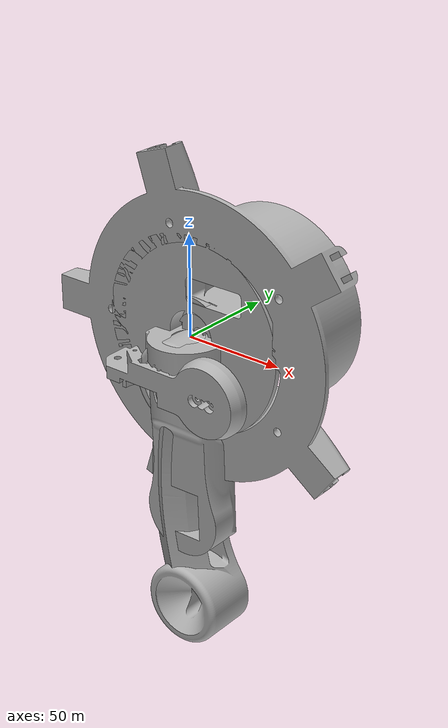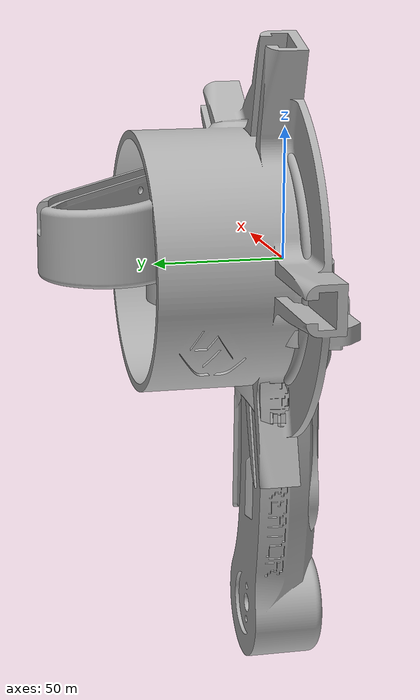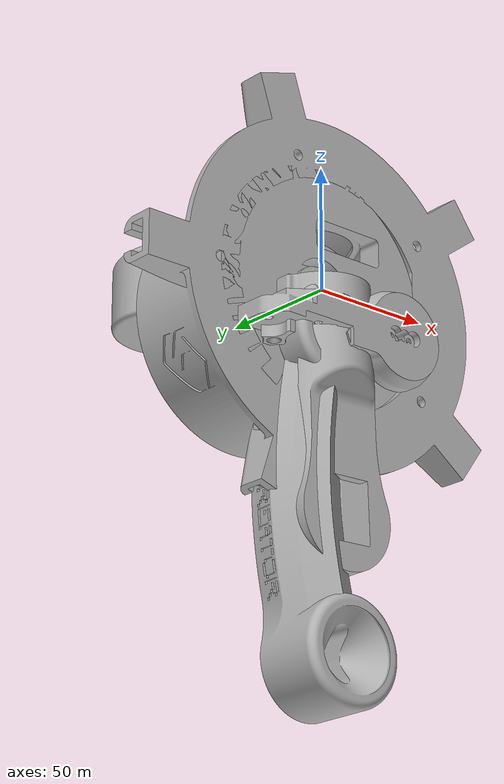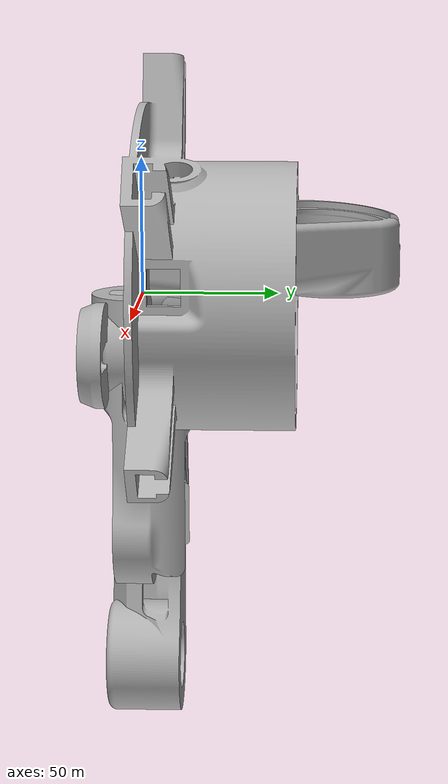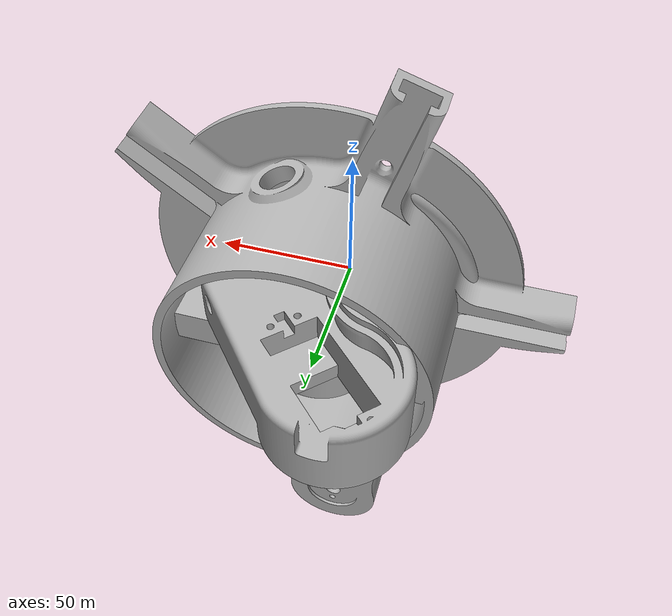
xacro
<?xml version="1.0"?>
<robot name="r6bot" xmlns:xacro="http://www.ros.org/wiki/xacro">

  <!-- 'pi' ya viene definido en xacro, no hay que redefinirlo -->

  <!-- macro auxiliar para crear links desde mallas -->
  <xacro:include filename="$(find r6bot_description)/urdf/create_link.xacro"/>

  <!-- marco fijo del mundo -->
  <link name="world"/>

  <!-- ===================== LINKS ===================== -->
  <xacro:create_link link_name="base_link" mesh_package="r6bot_description" mesh_name="base_link"/>
  <xacro:create_link link_name="link_1"    mesh_package="r6bot_description" mesh_name="link_1"/>
  <xacro:create_link link_name="link_2"    mesh_package="r6bot_description" mesh_name="link_2"/>
  <xacro:create_link link_name="link_3"    mesh_package="r6bot_description" mesh_name="link_3"/>
  <xacro:create_link link_name="link_4"    mesh_package="r6bot_description" mesh_name="link_4"/>
  <xacro:create_link link_name="link_5"    mesh_package="r6bot_description" mesh_name="link_5"/>

  <!-- marco de la herramienta / efector final -->
  <link name="tool0"/>

  <!-- ===================== JOINTS ===================== -->

  <!-- fija la base al mundo -->
  <joint name="base_joint" type="fixed">
    <parent link="world"/>
    <child link="base_link"/>
    <origin xyz="0 0 0" rpy="0 0 0"/>
  </joint>

  <!-- joint_1: base_link -> link_1   (AJUSTAR offset con la imagen) -->
  <joint name="joint_1" type="revolute">
    <parent link="base_link"/>
    <child link="link_1"/>
    <origin xyz="0 0 0.10" rpy="0 0 0"/>
    <axis xyz="0 0 1"/>
    <limit effort="1000.0" lower="${-pi}" upper="${pi}" velocity="2.5"/>
  </joint>

  <!-- joint_2: link_1 -> link_2 -->
  <joint name="joint_2" type="revolute">
    <parent link="link_1"/>
    <child link="link_2"/>
    <origin xyz="0 0 0.15" rpy="${-pi/2} 0 0"/>
    <axis xyz="0 0 1"/>
    <limit effort="1000.0" lower="${-pi}" upper="${pi}" velocity="2.5"/>
  </joint>

  <!-- joint_3: link_2 -> link_3 -->
  <joint name="joint_3" type="revolute">
    <parent link="link_2"/>
    <child link="link_3"/>
    <origin xyz="0.30 0 0" rpy="0 0 0"/>
    <axis xyz="0 0 1"/>
    <limit effort="1000.0" lower="${-pi}" upper="${pi}" velocity="2.5"/>
  </joint>

  <!-- joint_4: link_3 -> link_4 -->
  <joint name="joint_4" type="revolute">
    <parent link="link_3"/>
    <child link="link_4"/>
    <origin xyz="0.30 0 0" rpy="${pi/2} 0 0"/>
    <axis xyz="0 0 1"/>
    <limit effort="1000.0" lower="${-pi}" upper="${pi}" velocity="2.5"/>
  </joint>

  <!-- joint_5: link_4 -> link_5 -->
  <joint name="joint_5" type="revolute">
    <parent link="link_4"/>
    <child link="link_5"/>
    <origin xyz="0 0 0.15" rpy="${-pi/2} 0 0"/>
    <axis xyz="0 0 1"/>
    <limit effort="1000.0" lower="${-pi}" upper="${pi}" velocity="2.5"/>
  </joint>

  <!-- herramienta fija al ultimo link -->
  <joint name="joint_tool" type="fixed">
    <parent link="link_5"/>
    <child link="tool0"/>
    <origin xyz="0 0 0.08" rpy="0 0 0"/>
  </joint>

</robot>

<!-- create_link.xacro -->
<robot xmlns:xacro="http://wiki.ros.org/xacro">

  <!--
    Macro para crear un link a partir de una malla STL.
    Usa el mismo STL para el modelo visual y para la colision,
    porque en este proyecto solo tenemos archivos .stl (no hay .dae).
  -->
  <xacro:macro name="create_link" params="
        link_name
        mesh_package
        mesh_name
        xyz_offset:='0 0 0'
        rpy_offset:='0 0 0'
        mass:=1.0">
    <link name="${link_name}">
      <visual>
        <origin xyz="${xyz_offset}" rpy="${rpy_offset}"/>
        <geometry>
          <mesh filename="package://${mesh_package}/meshes/${mesh_name}.stl"/>
        </geometry>
        <material name="grey">
          <color rgba="0.7 0.7 0.7 1.0"/>
        </material>
      </visual>
      <collision>
        <origin xyz="${xyz_offset}" rpy="${rpy_offset}"/>
        <geometry>
          <mesh filename="package://${mesh_package}/meshes/${mesh_name}.stl"/>
        </geometry>
      </collision>
      <!-- Inercia generica (placeholder). Ajustar con datos reales si se requiere dinamica/Gazebo. -->
      <inertial>
        <mass value="${mass}"/>
        <inertia ixx="1.0" ixy="0.0" ixz="0.0" iyy="1.0" iyz="0.0" izz="1.0"/>
      </inertial>
    </link>
  </xacro:macro>
</robot>
